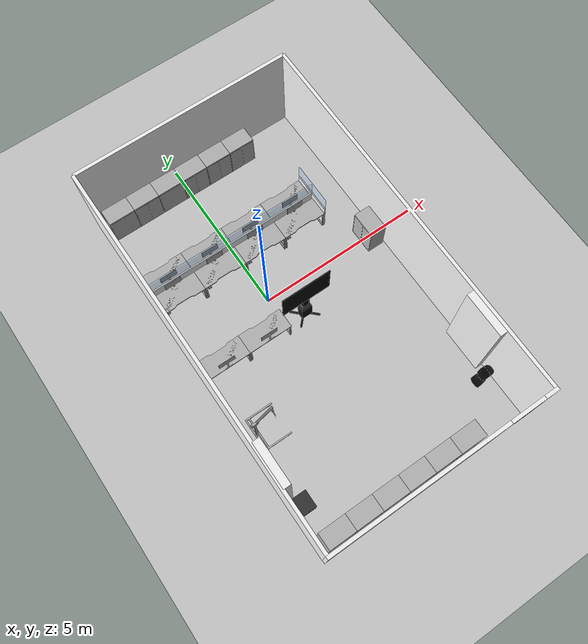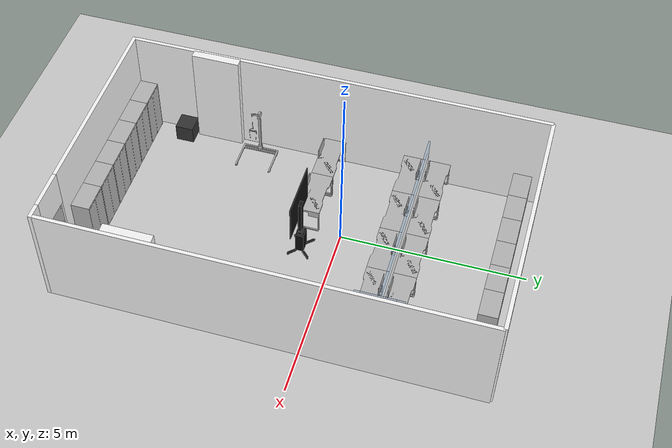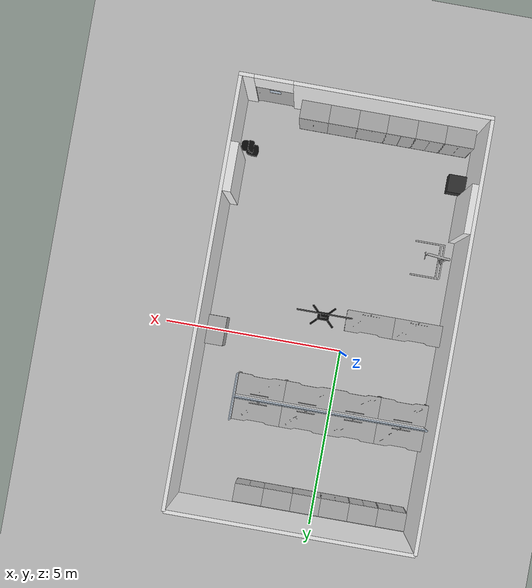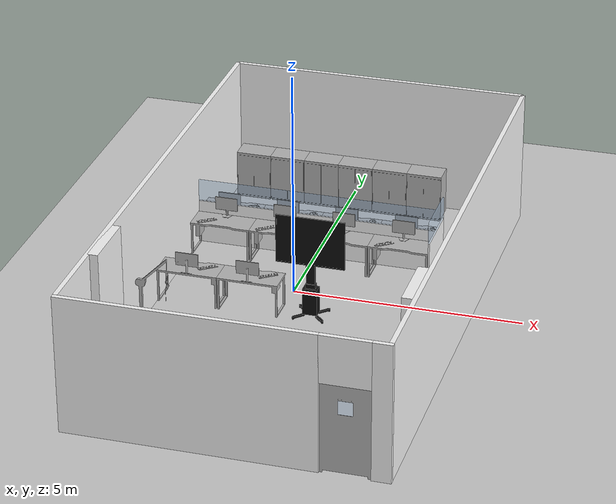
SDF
<sdf version="1.10">
 <world name="mobilab">
  <physics name="1ms" type="ignored">
   <max_step_size>0.005</max_step_size>
   <real_time_factor>1</real_time_factor>
   <real_time_update_rate>1000</real_time_update_rate>
  </physics>
  <plugin name="gz::sim::systems::Physics" filename="gz-sim-physics-system"/>
  <plugin name="gz::sim::systems::UserCommands" filename="gz-sim-user-commands-system"/>
  <plugin name="gz::sim::systems::SceneBroadcaster" filename="gz-sim-scene-broadcaster-system"/>
  <plugin name="gz::sim::systems::Contact" filename="gz-sim-contact-system"/>
  <gravity>0 0 -9.8000000000000007</gravity>
  <magnetic_field>5.5644999999999998e-06 2.2875799999999999e-05 -4.2388400000000002e-05</magnetic_field>
  <atmosphere type="adiabatic"/>
  <scene>
   <ambient>0.400000006 0.400000006 0.400000006 1</ambient>
   <background>0.699999988 0.699999988 0.699999988 1</background>
   <shadows>true</shadows>
  </scene>
  <model name="ground_plane">
   <static>true</static>
   <link name="link">
    <collision name="collision">
     <geometry><plane><normal>0 0 1</normal><size>100 100</size></plane></geometry>
    </collision>
    <visual name="visual">
     <geometry><plane><normal>0 0 1</normal><size>100 100</size></plane></geometry>
     <material>
      <ambient>0.8 0.8 0.8 1</ambient>
      <diffuse>0.8 0.8 0.8 1</diffuse>
      <specular>0.8 0.8 0.8 1</specular>
     </material>
    </visual>
    <inertial>
     <mass>1</mass>
     <inertia><ixx>1</ixx><ixy>0</ixy><ixz>0</ixz><iyy>1</iyy><iyz>0</iyz><izz>1</izz></inertia>
    </inertial>
   </link>
  </model>
  <include><uri>model://Apple</uri><name>Apple_1</name><pose>0 5.0 0.0 0 0 0</pose></include>
  <include><uri>model://Desk</uri><name>Desk_1</name><pose>-2.01 1.35 0 0 0 -1.570796327</pose></include>
  <include><uri>model://Desk</uri><name>Desk_2</name><pose>-0.67 1.35 0 0 0 -1.570796327</pose></include>
  <include><uri>model://Desk</uri><name>Desk_3</name><pose>0.67 1.35 0 0 0 -1.570796327</pose></include>
  <include><uri>model://Desk</uri><name>Desk_4</name><pose>2.01 1.35 0 0 0 -1.570796327</pose></include>
  <model name="wall_desk_1">
   <pose>0.0 1.7 0.5 0.0 0.0 0.0</pose>
   <link name="box_link">
    <inertial>
     <inertia><ixx>0.16666</ixx><ixy>0</ixy><ixz>0</ixz><iyy>0.16666</iyy><iyz>0</iyz><izz>0.16666</izz></inertia>
     <mass>1</mass>
    </inertial>
    <collision name="box_collision"><geometry><box><size>5.36 0.035 1</size></box></geometry></collision>
    <visual name="box_visual">
     <geometry><box><size>5.36 0.04 1</size></box></geometry>
     <material>
      <ambient>0.95 0.95 0.95 1.0</ambient>
      <diffuse>0.98 0.98 0.98 1.0</diffuse>
      <specular>0.05 0.05 0.05 1.0</specular>
      <emissive>0.0 0.0 0.0 1.0</emissive>
     </material>
    </visual>
   </link>
   <static>true</static>
  </model>
  <model name="window_desk_1">
   <pose>0.0 1.7 1.25 0.0 0.0 0.0</pose>
   <link name="box_link">
    <inertial>
     <inertia><ixx>0.16666</ixx><ixy>0</ixy><ixz>0</ixz><iyy>0.16666</iyy><iyz>0</iyz><izz>0.16666</izz></inertia>
     <mass>1</mass>
    </inertial>
    <collision name="box_collision"><geometry><box><size>5.36 0.035 0.5</size></box></geometry></collision>
    <visual name="box_visual">
     <geometry><box><size>5.36 0.04 0.5</size></box></geometry>
     <material>
      <ambient>0.6 0.8 1.0 0.3</ambient>
      <diffuse>0.6 0.8 1.0 0.3</diffuse>
      <specular>1.0 1.0 1.0 0.5</specular>
      <emissive>0.0 0.0 0.0 0.3</emissive>
     </material>
    </visual>
   </link>
   <static>true</static>
  </model>
  <model name="wall_desk_2">
   <pose>2.698 1.7 0.5 0.0 0.0 0.0</pose>
   <link name="box_link">
    <inertial>
     <inertia><ixx>0.16666</ixx><ixy>0</ixy><ixz>0</ixz><iyy>0.16666</iyy><iyz>0</iyz><izz>0.16666</izz></inertia>
     <mass>1</mass>
    </inertial>
    <collision name="box_collision"><geometry><box><size>0.035 1.285 1</size></box></geometry></collision>
    <visual name="box_visual">
     <geometry><box><size>0.035 1.285 1</size></box></geometry>
     <material>
      <ambient>0.95 0.95 0.95 1.0</ambient>
      <diffuse>0.98 0.98 0.98 1.0</diffuse>
      <specular>0.05 0.05 0.05 1.0</specular>
      <emissive>0.0 0.0 0.0 1.0</emissive>
     </material>
    </visual>
   </link>
   <static>true</static>
  </model>
  <model name="window_desk_2">
   <pose>2.698 1.7 1.25 0.0 0.0 0.0</pose>
   <link name="box_link">
    <inertial>
     <inertia><ixx>0.16666</ixx><ixy>0</ixy><ixz>0</ixz><iyy>0.16666</iyy><iyz>0</iyz><izz>0.16666</izz></inertia>
     <mass>1</mass>
    </inertial>
    <collision name="box_collision"><geometry><box><size>0.035 1.285 0.5</size></box></geometry></collision>
    <visual name="box_visual">
     <geometry><box><size>0.035 1.285 0.5</size></box></geometry>
     <material>
      <ambient>0.6 0.8 1.0 0.3</ambient>
      <diffuse>0.6 0.8 1.0 0.3</diffuse>
      <specular>1.0 1.0 1.0 0.5</specular>
      <emissive>0.0 0.0 0.0 0.3</emissive>
     </material>
    </visual>
   </link>
   <static>true</static>
  </model>
  <include><uri>model://Desk</uri><name>Desk_5</name><pose>-2.01 2.05 0 0 0 1.570796327</pose></include>
  <include><uri>model://Desk</uri><name>Desk_6</name><pose>-0.67 2.05 0 0 0 1.570796327</pose></include>
  <include><uri>model://Desk</uri><name>Desk_7</name><pose>0.67 2.05 0 0 0 1.570796327</pose></include>
  <include><uri>model://Desk</uri><name>Desk_8</name><pose>2.01 2.05 0 0 0 1.570796327</pose></include>
  <include><uri>model://Desk</uri><name>Desk_9_1</name><pose>-2.01 -0.9 0 0 0 1.570796327</pose></include>
  <include><uri>model://Desk</uri><name>Desk_9_2</name><pose>-0.67 -0.9 0 0 0 1.570796327</pose></include>
  <include>
   <uri>model://SmallCabinet</uri>
   <name>SmallCabinet_1</name>
   <pose>-2.16 4.30 0.0 0 0 -1.570796327</pose>
  </include>
  <include>
   <uri>model://SmallCabinet</uri>
   <name>SmallCabinet_2</name>
   <pose>-1.36 4.30 0.0 0 0 -1.570796327</pose>
  </include>
  <include>
   <uri>model://SmallCabinet</uri>
   <name>SmallCabinet_3</name>
   <pose>-0.56 4.30 0.0 0 0 -1.570796327</pose>
  </include>
  <include>
   <uri>model://SmallCabinet</uri>
   <name>SmallCabinet_4</name>
   <pose>0.24 4.30 0.0 0 0 -1.570796327</pose>
  </include>
  <include>
   <uri>model://SmallCabinet</uri>
   <name>SmallCabinet_5</name>
   <pose>1.04 4.30 0.0 0 0 -1.570796327</pose>
  </include>
  <include>
   <uri>model://SmallCabinet</uri>
   <name>SmallCabinet_6</name>
   <pose>1.84 4.30 0.0 0 0 -1.570796327</pose>
  </include>
  <include>
   <uri>model://SmallCabinet</uri>
   <name>SmallCabinet_7</name>
   <pose>3.50 0 0.0 0 0 3.141592654</pose>
  </include>
  <include>
   <uri>model://BigCabinet</uri>
   <name>BigCabinet_1</name>
   <pose>-2.16 -6.30 0.0 0 0 1.570796327</pose>
  </include>
  <include>
   <uri>model://BigCabinet</uri>
   <name>BigCabinet_2</name>
   <pose>-1.36 -6.30 0.0 0 0 1.570796327</pose>
  </include>
  <include>
   <uri>model://BigCabinet</uri>
   <name>BigCabinet_3</name>
   <pose>-0.56 -6.30 0.0 0 0 1.570796327</pose>
  </include>
  <include>
   <uri>model://BigCabinet</uri>
   <name>BigCabinet_4</name>
   <pose>0.24 -6.30 0.0 0 0 1.570796327</pose>
  </include>
  <include>
   <uri>model://BigCabinet</uri>
   <name>BigCabinet_5</name>
   <pose>1.04 -6.30 0.0 0 0 1.570796327</pose>
  </include>
  <include>
   <uri>model://BigCabinet</uri>
   <name>BigCabinet_6</name>
   <pose>1.84 -6.30 0.0 0 0 1.570796327</pose>
  </include>
  <include><uri>model://Temi</uri><name>Temi</name><pose>3.48 -5.2 0 0.0 0.0 -1.570796327</pose></include>
  <include><uri>model://Crane</uri><name>Crane</name><pose>-2.0 -3.0 0 0.0 0.0 0</pose></include>
  <include><uri>model://Door</uri><name>Door</name><pose>3.0 -6.65 0.9435 0.0 0.0 0</pose></include>
  <include><uri>model://TV</uri><name>TV</name><pose>0.65 -0.9 -0.035 0.0 0.0 -1.570796327</pose></include>
  <model name="wall_room_1">
   <pose>-2.73 -0.9 1.5 0.0 0.0 0.0</pose>
   <link name="box_link">
    <inertial>
     <inertia><ixx>0.16666</ixx><ixy>0</ixy><ixz>0</ixz><iyy>0.16666</iyy><iyz>0</iyz><izz>0.16666</izz></inertia>
     <mass>1</mass>
    </inertial>
    <collision name="box_collision"><geometry><box><size>0.1 11.4 3</size></box></geometry></collision>
    <visual name="box_visual">
     <geometry><box><size>0.1 11.4 3</size></box></geometry>
     <material>
      <ambient>0.95 0.95 0.95 1.0</ambient>
      <diffuse>0.98 0.98 0.98 1.0</diffuse>
      <specular>0.05 0.05 0.05 1.0</specular>
      <emissive>0.0 0.0 0.0 1.0</emissive>
     </material>
    </visual>
   </link>
   <static>true</static>
  </model>
  <model name="wall_room_2">
   <pose>3.87 -0.9 1.5 0.0 0.0 0.0</pose>
   <link name="box_link">
    <inertial>
     <inertia><ixx>0.16666</ixx><ixy>0</ixy><ixz>0</ixz><iyy>0.16666</iyy><iyz>0</iyz><izz>0.16666</izz></inertia>
     <mass>1</mass>
    </inertial>
    <collision name="box_collision"><geometry><box><size>0.1 11.4 3</size></box></geometry></collision>
    <visual name="box_visual">
     <geometry><box><size>0.1 11.4 3</size></box></geometry>
     <material>
      <ambient>0.95 0.95 0.95 1.0</ambient>
      <diffuse>0.98 0.98 0.98 1.0</diffuse>
      <specular>0.05 0.05 0.05 1.0</specular>
      <emissive>0.0 0.0 0.0 1.0</emissive>
     </material>
    </visual>
   </link>
   <static>true</static>
  </model>
  <model name="wall_room_3">
   <pose>0.57 4.8 1.5 0.0 0.0 0.0</pose>
   <link name="box_link">
    <inertial>
     <inertia><ixx>0.16666</ixx><ixy>0</ixy><ixz>0</ixz><iyy>0.16666</iyy><iyz>0</iyz><izz>0.16666</izz></inertia>
     <mass>1</mass>
    </inertial>
    <collision name="box_collision"><geometry><box><size>6.7 0.1 3</size></box></geometry></collision>
    <visual name="box_visual">
     <geometry><box><size>6.6 0.1 3</size></box></geometry>
     <material>
      <ambient>0.95 0.95 0.95 1.0</ambient>
      <diffuse>0.98 0.98 0.98 1.0</diffuse>
      <specular>0.05 0.05 0.05 1.0</specular>
      <emissive>0.0 0.0 0.0 1.0</emissive>
     </material>
    </visual>
   </link>
   <static>true</static>
  </model>
  <model name="wall_room_4_1">
   <pose>-0.14 -6.65 1.5 0.0 0.0 0.0</pose>
   <link name="box_link">
    <inertial>
     <inertia><ixx>0.16666</ixx><ixy>0</ixy><ixz>0</ixz><iyy>0.16666</iyy><iyz>0</iyz><izz>0.16666</izz></inertia>
     <mass>1</mass>
    </inertial>
    <collision name="box_collision"><geometry><box><size>5.262038 0.1 3</size></box></geometry></collision>
    <visual name="box_visual">
     <geometry><box><size>5.262038 0.1 3</size></box></geometry>
     <material>
      <ambient>0.95 0.95 0.95 1.0</ambient>
      <diffuse>0.98 0.98 0.98 1.0</diffuse>
      <specular>0.05 0.05 0.05 1.0</specular>
      <emissive>0.0 0.0 0.0 1.0</emissive>
     </material>
    </visual>
   </link>
   <static>true</static>
  </model>
  <model name="wall_room_4_2">
   <pose>3.719825 -6.65 1.5 0.0 0.0 0.0</pose>
   <link name="box_link">
    <inertial>
     <inertia><ixx>0.16666</ixx><ixy>0</ixy><ixz>0</ixz><iyy>0.16666</iyy><iyz>0</iyz><izz>0.16666</izz></inertia>
     <mass>1</mass>
    </inertial>
    <collision name="box_collision"><geometry><box><size>0.400112 0.1 3</size></box></geometry></collision>
    <visual name="box_visual">
     <geometry><box><size>0.400112 0.1 3</size></box></geometry>
     <material>
      <ambient>0.95 0.95 0.95 1.0</ambient>
      <diffuse>0.98 0.98 0.98 1.0</diffuse>
      <specular>0.05 0.05 0.05 1.0</specular>
      <emissive>0.0 0.0 0.0 1.0</emissive>
     </material>
    </visual>
   </link>
   <static>true</static>
  </model>
  <model name="wall_room_4_3">
   <pose>3.0 -6.65 2.485 0.0 0.0 0</pose>
   <link name="box_link">
    <inertial>
     <inertia><ixx>0.16666</ixx><ixy>0</ixy><ixz>0</ixz><iyy>0.16666</iyy><iyz>0</iyz><izz>0.16666</izz></inertia>
     <mass>1</mass>
    </inertial>
    <collision name="box_collision"><geometry><box><size>1.04 0.1 1.03</size></box></geometry></collision>
    <visual name="box_visual">
     <geometry><box><size>1.04 0.1 1.03</size></box></geometry>
     <material>
      <ambient>0.95 0.95 0.95 1.0</ambient>
      <diffuse>0.98 0.98 0.98 1.0</diffuse>
      <specular>0.05 0.05 0.05 1.0</specular>
      <emissive>0.0 0.0 0.0 1.0</emissive>
     </material>
    </visual>
   </link>
   <static>true</static>
  </model>
  <model name="window_room_4">
   <pose>3.0 -6.65 1.473650 0.0 0.0 0</pose>
   <link name="box_link">
    <inertial>
     <inertia><ixx>0.16666</ixx><ixy>0</ixy><ixz>0</ixz><iyy>0.16666</iyy><iyz>0</iyz><izz>0.16666</izz></inertia>
     <mass>1</mass>
    </inertial>
    <collision name="box_collision"><geometry><box><size>0.3 0.005 0.3</size></box></geometry></collision>
    <visual name="box_visual">
     <geometry><box><size>0.3 0.005 0.3</size></box></geometry>
     <material>
      <ambient>0.6 0.8 1.0 0.3</ambient>
      <diffuse>0.6 0.8 1.0 0.3</diffuse>
      <specular>1.0 1.0 1.0 0.5</specular>
      <emissive>0.0 0.0 0.0 0.3</emissive>
     </material>
    </visual>
   </link>
   <static>true</static>
  </model>
  <model name="col_room_1">
   <pose>3.71 -4.25 1.5 0.0 0.0 0.0</pose>
   <link name="box_link">
    <inertial>
     <inertia><ixx>0.16666</ixx><ixy>0</ixy><ixz>0</ixz><iyy>0.16666</iyy><iyz>0</iyz><izz>0.16666</izz></inertia>
     <mass>1</mass>
    </inertial>
    <collision name="box_collision"><geometry><box><size>0.22 1.3 3</size></box></geometry></collision>
    <visual name="box_visual">
     <geometry><box><size>0.22 1.3 3</size></box></geometry>
     <material>
      <ambient>0.95 0.95 0.95 1.0</ambient>
      <diffuse>0.98 0.98 0.98 1.0</diffuse>
      <specular>0.05 0.05 0.05 1.0</specular>
      <emissive>0.0 0.0 0.0 1.0</emissive>
     </material>
    </visual>
   </link>
   <static>true</static>
  </model>
  <model name="col_room_2">
   <pose>-2.615 -4.25 1.5 0.0 0.0 0.0</pose>
   <link name="box_link">
    <inertial>
     <inertia><ixx>0.16666</ixx><ixy>0</ixy><ixz>0</ixz><iyy>0.16666</iyy><iyz>0</iyz><izz>0.16666</izz></inertia>
     <mass>1</mass>
    </inertial>
    <collision name="box_collision"><geometry><box><size>0.22 1.3 3</size></box></geometry></collision>
    <visual name="box_visual">
     <geometry><box><size>0.22 1.3 3</size></box></geometry>
     <material>
      <ambient>0.95 0.95 0.95 1.0</ambient>
      <diffuse>0.98 0.98 0.98 1.0</diffuse>
      <specular>0.05 0.05 0.05 1.0</specular>
      <emissive>0.0 0.0 0.0 1.0</emissive>
     </material>
    </visual>
   </link>
   <static>true</static>
  </model>
  <model name="cube_1">
   <pose>-2.4 -5.2 0.25 0.0 0.0 0.0</pose>
   <link name="box_link">
    <inertial>
     <inertia><ixx>0.16666</ixx><ixy>0</ixy><ixz>0</ixz><iyy>0.16666</iyy><iyz>0</iyz><izz>0.16666</izz></inertia>
     <mass>1</mass>
    </inertial>
    <collision name="box_collision"><geometry><box><size>0.5 0.5 0.5</size></box></geometry></collision>
    <visual name="box_visual">
     <geometry><box><size>0.5 0.5 0.5</size></box></geometry>
     <material>
      <ambient>0.1 0.1 0.1 1</ambient>
      <diffuse>0.2 0.2 0.2 1</diffuse>
      <specular>0.2 0.2 0.2 1</specular>
      <emissive>0 0 0 1</emissive>
     </material>
    </visual>
   </link>
   <static>true</static>
  </model>
  <light type="point" name="ceiling_light_1">
   <pose>0 -5.4 3 0 0 0</pose>
   <diffuse>1 1 1 1</diffuse>
   <specular>0.0 0.0 0.0 0</specular>
   <attenuation>
    <range>50</range>
    <linear>0</linear>
    <constant>0</constant>
    <quadratic>0.02</quadratic>
   </attenuation>
   <visualize>false</visualize>
   <intensity>0.20</intensity>
  </light>
  <light type="point" name="ceiling_light_2">
   <pose>0 -3.6 3 0 0 0</pose>
   <diffuse>1 1 1 1</diffuse>
   <specular>0.0 0.0 0.0 0</specular>
   <attenuation>
    <range>50</range>
    <linear>0</linear>
    <constant>0</constant>
    <quadratic>0.02</quadratic>
   </attenuation>
   <visualize>false</visualize>
   <intensity>0.20</intensity>
  </light>
  <light type="point" name="ceiling_light_3">
   <pose>0 -1.2 3 0 0 0</pose>
   <diffuse>1 1 1 1</diffuse>
   <specular>0.0 0.0 0.0 0</specular>
   <attenuation>
    <range>50</range>
    <linear>0</linear>
    <constant>0</constant>
    <quadratic>0.02</quadratic>
   </attenuation>
   <visualize>false</visualize>
   <intensity>0.20</intensity>
  </light>
  <light type="point" name="ceiling_light_4">
   <pose>0 0.6 3 0 0 0</pose>
   <diffuse>1 1 1 1</diffuse>
   <specular>0.0 0.0 0.0 0</specular>
   <attenuation>
    <range>50</range>
    <linear>0</linear>
    <constant>0</constant>
    <quadratic>0.02</quadratic>
   </attenuation>
   <visualize>false</visualize>
   <intensity>0.20</intensity>
  </light>
  <light type="point" name="ceiling_light_5">
   <pose>0 2.4 3 0 0 0</pose>
   <diffuse>1 1 1 1</diffuse>
   <specular>0.0 0.0 0.0 0</specular>
   <attenuation>
    <range>50</range>
    <linear>0</linear>
    <constant>0</constant>
    <quadratic>0.02</quadratic>
   </attenuation>
   <visualize>false</visualize>
   <intensity>0.20</intensity>
  </light>
  <light name="sun" type="directional">
   <pose>0 0 10 0 0 0</pose>
   <intensity>1</intensity>
   <diffuse>1.0 1.0 1.0 1</diffuse>
   <specular>0.1 0.1 0.1 1</specular>
   <direction>-0.5 0.5 -1</direction>
   <attenuation>
    <range>1000</range>
    <linear>0.01</linear>
    <constant>0.90000000000000002</constant>
    <quadratic>0.001</quadratic>
   </attenuation>
   <spot><inner_angle>0</inner_angle><outer_angle>0</outer_angle><falloff>0</falloff></spot>
  </light>
 </world>
</sdf>

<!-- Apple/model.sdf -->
<sdf version='1.10'>
    <model name="Apple">
        <pose> 0 0 0.5 0 0 0</pose>
        <static> false </static>

        <link name="apple_stem_link">
            <inertial>
                <mass>0.001</mass>
                <inertia>
                    <ixx>1e-5</ixx>
                    <iyy>1e-5</iyy>
                    <izz>1e-5</izz>
                </inertia>
            </inertial>
        </link>

        <link name="apple_link_x">
            <inertial>
                <mass>0.001</mass>
                <inertia>
                    <ixx>1e-5</ixx>
                    <iyy>1e-5</iyy>
                    <izz>1e-5</izz>
                </inertia>
            </inertial>
        </link>

        <joint name="apple_stem_joint" type="revolute">
            <parent>apple_stem_link</parent>
            <child>apple_link_x</child>
            <pose>0 0 0.1 0 0 0</pose>
            <axis>
                <xyz>1 0 0</xyz>
                <limit>
                    <lower>-0.7</lower>
                    <upper>0.7</upper>
                </limit>
                <dynamics>
                    <damping>0.003</damping>
                </dynamics>
            </axis>
        </joint>

        <joint name="apple_joint_y" type="revolute">
            <parent>apple_link_x</parent>
            <child>apple_link</child>
            <pose>0 0 0.1 0 0 0</pose>
            <axis>
                <xyz>0 1 0</xyz>
                <limit>
                    <lower>-0.7</lower>
                    <upper>0.7</upper>
                </limit>
                <dynamics>
                    <damping>0.003</damping>
                </dynamics>
            </axis>
        </joint>

        <link name="apple_link">
            <pose>0 0 -0.1 1.57 0 0</pose>
            <collision name="apple_collision">
                <geometry>
                    <mesh>
                        <uri>model://Apple/meshes/apple.obj</uri>
                        <scale>0.7 0.7 0.7</scale>
                    </mesh>
                </geometry>
                <surface>
                    <friction>
                        <ode>
                            <mu>4.0</mu>
                            <mu2>4.0</mu2>
                        </ode>
                    </friction>
                </surface>
            </collision>

            <visual name="apple_visual">
                <geometry>
                    <mesh>
                        <uri>model://Apple/meshes/apple.obj</uri>
                        <scale>0.7 0.7 0.7</scale>
                    </mesh>
                </geometry>
            </visual>

            <inertial>
                <mass> 0.125 </mass>
                <pose>0 0 0.03 0 0 0</pose>
                <inertia>
                    <ixx>0.0000984</ixx>
                    <ixy>0.0</ixy>
                    <ixz>0.0</ixz>
                    <iyy>0.0000984</iyy>
                    <iyz>0.0</iyz>
                    <izz>0.0000984</izz>
                </inertia>
            </inertial>
        </link>
    </model>
</sdf>

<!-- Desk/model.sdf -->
<sdf version="1.10">
    <model name="Desk">
        <static>true</static>
        <link name="body">
            <pose>0 0 0 0 0 0</pose>
            <visual name="visual">
                <geometry>
                    <mesh>
                        <uri>model://Desk/meshes/Desk2.obj</uri>
                    </mesh>
                </geometry>
            </visual>
            <collision name="collision">
                <geometry>
                    <mesh>
                        <uri>model://Desk/meshes/Desk2.obj</uri>
                    </mesh>
                </geometry>
            </collision>
        </link>
    </model>
</sdf>

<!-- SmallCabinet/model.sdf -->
<sdf version="1.10">
    <model name="SmallCabinet">
        <static>true</static>
        <link name="body">
            <pose>0 0 0 0 0 0</pose>
            <visual name="visual">
                <geometry>
                    <mesh>
                        <uri>model://SmallCabinet/meshes/SmallCabinet.obj</uri>
                    </mesh>
                </geometry>
            </visual>
            <collision name="collision">
                <geometry>
                    <mesh>
                        <uri>model://SmallCabinet/meshes/SmallCabinet.obj</uri>
                    </mesh>
                </geometry>
            </collision>
        </link>
    </model>
</sdf>

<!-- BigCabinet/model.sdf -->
<sdf version="1.10">
    <model name="BigCabinet">
        <static>true</static>
        <link name="body">
            <pose>0 0 0 0 0 0</pose>
            <visual name="visual">
                <geometry>
                    <mesh>
                        <uri>model://BigCabinet/meshes/BigCabinet.obj</uri>
                    </mesh>
                </geometry>
            </visual>
            <collision name="collision">
                <geometry>
                    <mesh>
                        <uri>model://BigCabinet/meshes/BigCabinet.obj</uri>
                    </mesh>
                </geometry>
            </collision>
        </link>
    </model>
</sdf>

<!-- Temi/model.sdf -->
<sdf version="1.10">
    <model name="Temi">
        <static>true</static>
        <link name="body">
            <pose>0 0 0 0 0 0</pose>
            <visual name="visual">
                <geometry>
                    <mesh>
                        <uri>model://Temi/meshes/Temi2.dae</uri>
                    </mesh>
                </geometry>
                <material>
                    <ambient>0.05 0.05 0.05 1</ambient>
                    <diffuse>0.05 0.05 0.05 1</diffuse>
                    <specular>0.1 0.1 0.1 1</specular>
                </material>
            </visual>
            <collision name="collision">
                <geometry>
                    <mesh>
                        <uri>model://Temi/meshes/Temi2.dae</uri>
                    </mesh>
                </geometry>
            </collision>
        </link>
    </model>
</sdf>

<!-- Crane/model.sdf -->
<sdf version="1.10">
    <model name="Crane">
        <static>true</static>
        <link name="body">
            <pose>0 0 0 0 0 0</pose>
            <visual name="visual">
                <geometry>
                    <mesh>
                        <uri>model://Crane/meshes/Crane2.obj</uri>
                    </mesh>
                </geometry>
            </visual>
            <collision name="collision">
                <geometry>
                    <mesh>
                        <uri>model://Crane/meshes/Crane2.obj</uri>
                    </mesh>
                </geometry>
            </collision>
        </link>
    </model>
</sdf>

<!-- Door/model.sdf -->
<sdf version="1.10">
    <model name="Door">
        <static>true</static>
        <link name="body">
            <pose>0 0 0 0 0 0</pose>
            <visual name="visual">
                <geometry>
                    <mesh>
                        <uri>model://Door/meshes/Door.obj</uri>
                    </mesh>
                </geometry>
            </visual>
            <collision name="collision">
                <geometry>
                    <mesh>
                        <uri>model://Door/meshes/Door.obj</uri>
                    </mesh>
                </geometry>
            </collision>
        </link>
    </model>
</sdf>

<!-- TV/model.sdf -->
<sdf version="1.10">
    <model name="TV">
        <static>true</static>
        <link name="body">
            <pose>0 0 0 0 0 0</pose>
            <visual name="visual">
                <geometry>
                    <mesh>
                        <uri>model://TV/meshes/TV.obj</uri>
                    </mesh>
                </geometry>
                <material>
                    <ambient>0.05 0.05 0.05 1</ambient>
                    <diffuse>0.05 0.05 0.05 1</diffuse>
                    <specular>0.1 0.1 0.1 1</specular>
                </material>
            </visual>
            <collision name="collision">
                <geometry>
                    <mesh>
                        <uri>model://TV/meshes/TV.obj</uri>
                    </mesh>
                </geometry>
            </collision>
        </link>
    </model>
</sdf>
